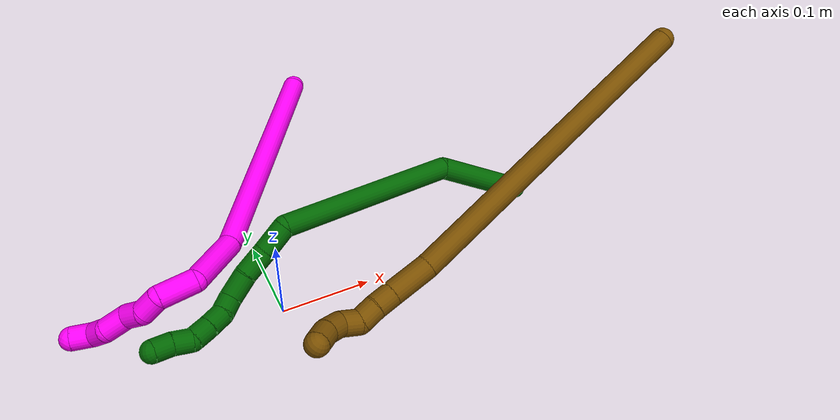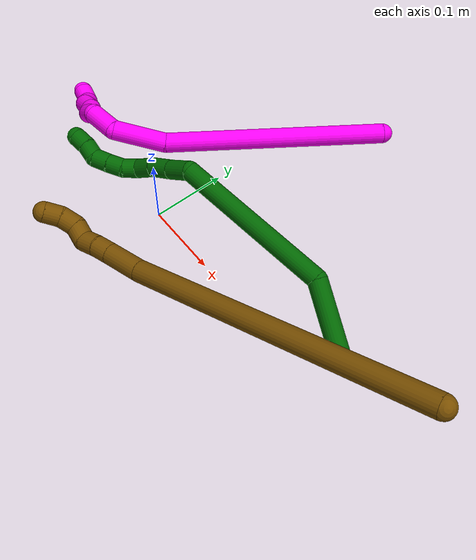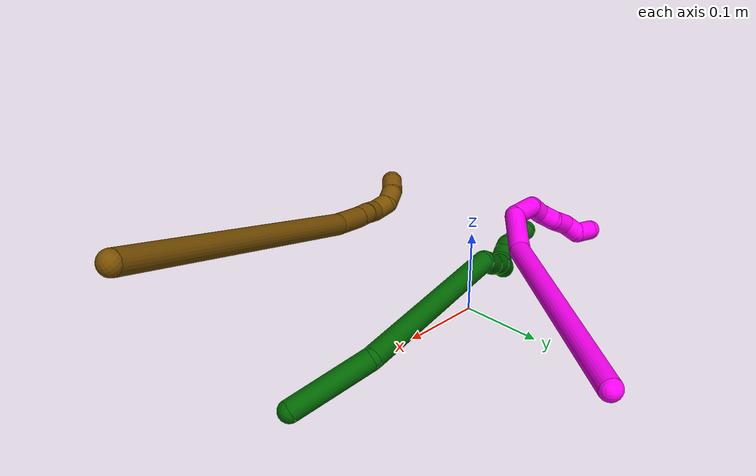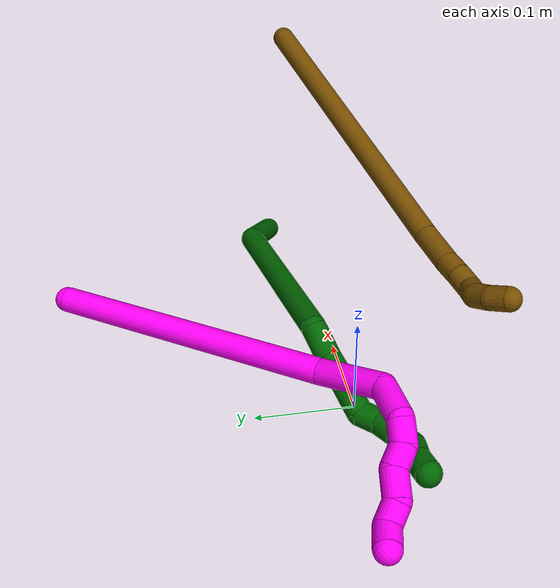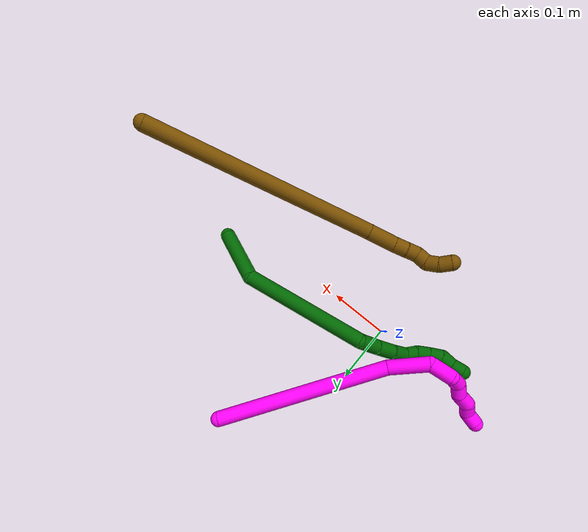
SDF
<sdf version="1.7">
 <world name="default">
  <model name="6">
   <static>0</static>
   <link name="6">
    <collision name="collision-cylinder-e_1_1_4">
     <pose>-0.036796 0.011792 -0.02721 -2.73267 -0.892449 2.3236</pose>
     <geometry><cylinder><radius>0.0125</radius><length>0.094517</length></cylinder></geometry>
     <surface>
      <friction><ode><mu>1.16</mu><mu2>1.16</mu2><slip1>0</slip1><slip2>0</slip2></ode></friction>
      <contact><ode><kp>1e+06</kp><kd>1</kd><max_vel>0</max_vel><min_depth>0.001</min_depth></ode></contact>
     </surface>
    </collision>
    <visual name="visual-cylinder-e_1_1_4">
     <pose>-0.036796 0.011792 -0.02721 -2.73267 -0.892449 2.3236</pose>
     <geometry><cylinder><radius>0.0125</radius><length>0.094517</length></cylinder></geometry>
     <material><ambient>0 0.392157 0.003922 1</ambient></material>
    </visual>
    <collision name="collision-cylinder-e_2_4_5">
     <pose>-0.154017 -0.009804 -0.111056 2.60892 -0.885497 -2.09734</pose>
     <geometry><cylinder><radius>0.0125</radius><length>0.207754</length></cylinder></geometry>
     <surface>
      <friction><ode><mu>1.16</mu><mu2>1.16</mu2><slip1>0</slip1><slip2>0</slip2></ode></friction>
      <contact><ode><kp>1e+06</kp><kd>1</kd><max_vel>0</max_vel><min_depth>0.001</min_depth></ode></contact>
     </surface>
    </collision>
    <visual name="visual-cylinder-e_2_4_5">
     <pose>-0.154017 -0.009804 -0.111056 2.60892 -0.885497 -2.09734</pose>
     <geometry><cylinder><radius>0.0125</radius><length>0.207754</length></cylinder></geometry>
     <material><ambient>0 0.392157 0.003922 1</ambient></material>
    </visual>
    <collision name="collision-cylinder-e_3_5_6">
     <pose>-0.238902 -0.055176 -0.178546 2.30675 -0.269197 -0.592714</pose>
     <geometry><cylinder><radius>0.0125</radius><length>0.033546</length></cylinder></geometry>
     <surface>
      <friction><ode><mu>1.16</mu><mu2>1.16</mu2><slip1>0</slip1><slip2>0</slip2></ode></friction>
      <contact><ode><kp>1e+06</kp><kd>1</kd><max_vel>0</max_vel><min_depth>0.001</min_depth></ode></contact>
     </surface>
    </collision>
    <visual name="visual-cylinder-e_3_5_6">
     <pose>-0.238902 -0.055176 -0.178546 2.30675 -0.269197 -0.592714</pose>
     <geometry><cylinder><radius>0.0125</radius><length>0.033546</length></cylinder></geometry>
     <material><ambient>0 0.392157 0.003922 1</ambient></material>
    </visual>
    <collision name="collision-cylinder-e_4_6_7">
     <pose>-0.248802 -0.078097 -0.198681 2.2745 -0.362389 -0.753686</pose>
     <geometry><cylinder><radius>0.0125</radius><length>0.030682</length></cylinder></geometry>
     <surface>
      <friction><ode><mu>1.16</mu><mu2>1.16</mu2><slip1>0</slip1><slip2>0</slip2></ode></friction>
      <contact><ode><kp>1e+06</kp><kd>1</kd><max_vel>0</max_vel><min_depth>0.001</min_depth></ode></contact>
     </surface>
    </collision>
    <visual name="visual-cylinder-e_4_6_7">
     <pose>-0.248802 -0.078097 -0.198681 2.2745 -0.362389 -0.753686</pose>
     <geometry><cylinder><radius>0.0125</radius><length>0.030682</length></cylinder></geometry>
     <material><ambient>0 0.392157 0.003922 1</ambient></material>
    </visual>
    <collision name="collision-cylinder-e_5_7_8">
     <pose>-0.257137 -0.100504 -0.216904 2.2329 -0.196625 -0.398511</pose>
     <geometry><cylinder><radius>0.0125</radius><length>0.029658</length></cylinder></geometry>
     <surface>
      <friction><ode><mu>1.16</mu><mu2>1.16</mu2><slip1>0</slip1><slip2>0</slip2></ode></friction>
      <contact><ode><kp>1e+06</kp><kd>1</kd><max_vel>0</max_vel><min_depth>0.001</min_depth></ode></contact>
     </surface>
    </collision>
    <visual name="visual-cylinder-e_5_7_8">
     <pose>-0.257137 -0.100504 -0.216904 2.2329 -0.196625 -0.398511</pose>
     <geometry><cylinder><radius>0.0125</radius><length>0.029658</length></cylinder></geometry>
     <material><ambient>0 0.392157 0.003922 1</ambient></material>
    </visual>
    <collision name="collision-cylinder-e_6_8_9">
     <pose>-0.266115 -0.120133 -0.226583 1.66102 -0.638573 -0.694397</pose>
     <geometry><cylinder><radius>0.0125</radius><length>0.020404</length></cylinder></geometry>
     <surface>
      <friction><ode><mu>1.16</mu><mu2>1.16</mu2><slip1>0</slip1><slip2>0</slip2></ode></friction>
      <contact><ode><kp>1e+06</kp><kd>1</kd><max_vel>0</max_vel><min_depth>0.001</min_depth></ode></contact>
     </surface>
    </collision>
    <visual name="visual-cylinder-e_6_8_9">
     <pose>-0.266115 -0.120133 -0.226583 1.66102 -0.638573 -0.694397</pose>
     <geometry><cylinder><radius>0.0125</radius><length>0.020404</length></cylinder></geometry>
     <material><ambient>0 0.392157 0.003922 1</ambient></material>
    </visual>
    <collision name="collision-cylinder-e_7_9_10">
     <pose>-0.279824 -0.134761 -0.230436 2.01955 -0.815543 -1.20452</pose>
     <geometry><cylinder><radius>0.0125</radius><length>0.020953</length></cylinder></geometry>
     <surface>
      <friction><ode><mu>1.16</mu><mu2>1.16</mu2><slip1>0</slip1><slip2>0</slip2></ode></friction>
      <contact><ode><kp>1e+06</kp><kd>1</kd><max_vel>0</max_vel><min_depth>0.001</min_depth></ode></contact>
     </surface>
    </collision>
    <visual name="visual-cylinder-e_7_9_10">
     <pose>-0.279824 -0.134761 -0.230436 2.01955 -0.815543 -1.20452</pose>
     <geometry><cylinder><radius>0.0125</radius><length>0.020953</length></cylinder></geometry>
     <material><ambient>0 0.392157 0.003922 1</ambient></material>
    </visual>
    <collision name="collision-cylinder-e_8_10_11">
     <pose>-0.295434 -0.147342 -0.237003 2.08493 -0.849579 -1.31858</pose>
     <geometry><cylinder><radius>0.0125</radius><length>0.021257</length></cylinder></geometry>
     <surface>
      <friction><ode><mu>1.16</mu><mu2>1.16</mu2><slip1>0</slip1><slip2>0</slip2></ode></friction>
      <contact><ode><kp>1e+06</kp><kd>1</kd><max_vel>0</max_vel><min_depth>0.001</min_depth></ode></contact>
     </surface>
    </collision>
    <visual name="visual-cylinder-e_8_10_11">
     <pose>-0.295434 -0.147342 -0.237003 2.08493 -0.849579 -1.31858</pose>
     <geometry><cylinder><radius>0.0125</radius><length>0.021257</length></cylinder></geometry>
     <material><ambient>0 0.392157 0.003922 1</ambient></material>
    </visual>
    <collision name="collision-cylinder-e_9_11_12">
     <pose>-0.311171 -0.154602 -0.247038 2.96877 -0.859502 -2.76798</pose>
     <geometry><cylinder><radius>0.0125</radius><length>0.020475</length></cylinder></geometry>
     <surface>
      <friction><ode><mu>1.16</mu><mu2>1.16</mu2><slip1>0</slip1><slip2>0</slip2></ode></friction>
      <contact><ode><kp>1e+06</kp><kd>1</kd><max_vel>0</max_vel><min_depth>0.001</min_depth></ode></contact>
     </surface>
    </collision>
    <visual name="visual-cylinder-e_9_11_12">
     <pose>-0.311171 -0.154602 -0.247038 2.96877 -0.859502 -2.76798</pose>
     <geometry><cylinder><radius>0.0125</radius><length>0.020475</length></cylinder></geometry>
     <material><ambient>0 0.392157 0.003922 1</ambient></material>
    </visual>
    <collision name="collision-cylinder-e_10_12_2">
     <pose>-0.327219 -0.158826 -0.259049 2.6261 -0.925915 -2.1698</pose>
     <geometry><cylinder><radius>0.0125</radius><length>0.020754</length></cylinder></geometry>
     <surface>
      <friction><ode><mu>1.16</mu><mu2>1.16</mu2><slip1>0</slip1><slip2>0</slip2></ode></friction>
      <contact><ode><kp>1e+06</kp><kd>1</kd><max_vel>0</max_vel><min_depth>0.001</min_depth></ode></contact>
     </surface>
    </collision>
    <visual name="visual-cylinder-e_10_12_2">
     <pose>-0.327219 -0.158826 -0.259049 2.6261 -0.925915 -2.1698</pose>
     <geometry><cylinder><radius>0.0125</radius><length>0.020754</length></cylinder></geometry>
     <material><ambient>0 0.392157 0.003922 1</ambient></material>
    </visual>
    <collision name="collision-sphere-2">
     <pose>-0.335512 -0.161901 -0.264476 0 -0 0</pose>
     <geometry><sphere><radius>0.0125</radius></sphere></geometry>
     <surface>
      <friction><ode><mu>1.16</mu><mu2>1.16</mu2><slip1>0</slip1><slip2>0</slip2></ode></friction>
      <contact><ode><kp>1e+06</kp><kd>1</kd><max_vel>0</max_vel><min_depth>0.001</min_depth></ode></contact>
     </surface>
    </collision>
    <visual name="visual-sphere-2">
     <pose>-0.335512 -0.161901 -0.264476 0 -0 0</pose>
     <geometry><sphere><radius>0.0125</radius></sphere></geometry>
     <material><ambient>0 0.392157 0.003922 1</ambient></material>
    </visual>
    <collision name="collision-sphere-12">
     <pose>-0.318926 -0.155751 -0.253622 0 -0 0</pose>
     <geometry><sphere><radius>0.0125</radius></sphere></geometry>
     <surface>
      <friction><ode><mu>1.16</mu><mu2>1.16</mu2><slip1>0</slip1><slip2>0</slip2></ode></friction>
      <contact><ode><kp>1e+06</kp><kd>1</kd><max_vel>0</max_vel><min_depth>0.001</min_depth></ode></contact>
     </surface>
    </collision>
    <visual name="visual-sphere-12">
     <pose>-0.318926 -0.155751 -0.253622 0 -0 0</pose>
     <geometry><sphere><radius>0.0125</radius></sphere></geometry>
     <material><ambient>0 0.392157 0.003922 1</ambient></material>
    </visual>
    <collision name="collision-sphere-11">
     <pose>-0.303416 -0.153453 -0.240454 0 -0 0</pose>
     <geometry><sphere><radius>0.0125</radius></sphere></geometry>
     <surface>
      <friction><ode><mu>1.16</mu><mu2>1.16</mu2><slip1>0</slip1><slip2>0</slip2></ode></friction>
      <contact><ode><kp>1e+06</kp><kd>1</kd><max_vel>0</max_vel><min_depth>0.001</min_depth></ode></contact>
     </surface>
    </collision>
    <visual name="visual-sphere-11">
     <pose>-0.303416 -0.153453 -0.240454 0 -0 0</pose>
     <geometry><sphere><radius>0.0125</radius></sphere></geometry>
     <material><ambient>0 0.392157 0.003922 1</ambient></material>
    </visual>
    <collision name="collision-sphere-10">
     <pose>-0.287451 -0.141231 -0.233552 0 -0 0</pose>
     <geometry><sphere><radius>0.0125</radius></sphere></geometry>
     <surface>
      <friction><ode><mu>1.16</mu><mu2>1.16</mu2><slip1>0</slip1><slip2>0</slip2></ode></friction>
      <contact><ode><kp>1e+06</kp><kd>1</kd><max_vel>0</max_vel><min_depth>0.001</min_depth></ode></contact>
     </surface>
    </collision>
    <visual name="visual-sphere-10">
     <pose>-0.287451 -0.141231 -0.233552 0 -0 0</pose>
     <geometry><sphere><radius>0.0125</radius></sphere></geometry>
     <material><ambient>0 0.392157 0.003922 1</ambient></material>
    </visual>
    <collision name="collision-sphere-9">
     <pose>-0.272196 -0.128291 -0.227321 0 -0 0</pose>
     <geometry><sphere><radius>0.0125</radius></sphere></geometry>
     <surface>
      <friction><ode><mu>1.16</mu><mu2>1.16</mu2><slip1>0</slip1><slip2>0</slip2></ode></friction>
      <contact><ode><kp>1e+06</kp><kd>1</kd><max_vel>0</max_vel><min_depth>0.001</min_depth></ode></contact>
     </surface>
    </collision>
    <visual name="visual-sphere-9">
     <pose>-0.272196 -0.128291 -0.227321 0 -0 0</pose>
     <geometry><sphere><radius>0.0125</radius></sphere></geometry>
     <material><ambient>0 0.392157 0.003922 1</ambient></material>
    </visual>
    <collision name="collision-sphere-4">
     <pose>-0.073592 0.023583 -0.05442 0 -0 0</pose>
     <geometry><sphere><radius>0.0125</radius></sphere></geometry>
     <surface>
      <friction><ode><mu>1.16</mu><mu2>1.16</mu2><slip1>0</slip1><slip2>0</slip2></ode></friction>
      <contact><ode><kp>1e+06</kp><kd>1</kd><max_vel>0</max_vel><min_depth>0.001</min_depth></ode></contact>
     </surface>
    </collision>
    <visual name="visual-sphere-4">
     <pose>-0.073592 0.023583 -0.05442 0 -0 0</pose>
     <geometry><sphere><radius>0.0125</radius></sphere></geometry>
     <material><ambient>0 0.392157 0.003922 1</ambient></material>
    </visual>
    <collision name="collision-sphere-1">
     <geometry><sphere><radius>0.0125</radius></sphere></geometry>
     <surface>
      <friction><ode><mu>1.16</mu><mu2>1.16</mu2><slip1>0</slip1><slip2>0</slip2></ode></friction>
      <contact><ode><kp>1e+06</kp><kd>1</kd><max_vel>0</max_vel><min_depth>0.001</min_depth></ode></contact>
     </surface>
    </collision>
    <visual name="visual-sphere-1">
     <geometry><sphere><radius>0.0125</radius></sphere></geometry>
     <material><ambient>0 0.392157 0.003922 1</ambient></material>
    </visual>
    <collision name="collision-sphere-8">
     <pose>-0.260034 -0.111974 -0.225845 0 -0 0</pose>
     <geometry><sphere><radius>0.0125</radius></sphere></geometry>
     <surface>
      <friction><ode><mu>1.16</mu><mu2>1.16</mu2><slip1>0</slip1><slip2>0</slip2></ode></friction>
      <contact><ode><kp>1e+06</kp><kd>1</kd><max_vel>0</max_vel><min_depth>0.001</min_depth></ode></contact>
     </surface>
    </collision>
    <visual name="visual-sphere-8">
     <pose>-0.260034 -0.111974 -0.225845 0 -0 0</pose>
     <geometry><sphere><radius>0.0125</radius></sphere></geometry>
     <material><ambient>0 0.392157 0.003922 1</ambient></material>
    </visual>
    <collision name="collision-sphere-5">
     <pose>-0.234441 -0.043191 -0.167691 0 -0 0</pose>
     <geometry><sphere><radius>0.0125</radius></sphere></geometry>
     <surface>
      <friction><ode><mu>1.16</mu><mu2>1.16</mu2><slip1>0</slip1><slip2>0</slip2></ode></friction>
      <contact><ode><kp>1e+06</kp><kd>1</kd><max_vel>0</max_vel><min_depth>0.001</min_depth></ode></contact>
     </surface>
    </collision>
    <visual name="visual-sphere-5">
     <pose>-0.234441 -0.043191 -0.167691 0 -0 0</pose>
     <geometry><sphere><radius>0.0125</radius></sphere></geometry>
     <material><ambient>0 0.392157 0.003922 1</ambient></material>
    </visual>
    <collision name="collision-sphere-6">
     <pose>-0.243363 -0.06716 -0.1894 0 -0 0</pose>
     <geometry><sphere><radius>0.0125</radius></sphere></geometry>
     <surface>
      <friction><ode><mu>1.16</mu><mu2>1.16</mu2><slip1>0</slip1><slip2>0</slip2></ode></friction>
      <contact><ode><kp>1e+06</kp><kd>1</kd><max_vel>0</max_vel><min_depth>0.001</min_depth></ode></contact>
     </surface>
    </collision>
    <visual name="visual-sphere-6">
     <pose>-0.243363 -0.06716 -0.1894 0 -0 0</pose>
     <geometry><sphere><radius>0.0125</radius></sphere></geometry>
     <material><ambient>0 0.392157 0.003922 1</ambient></material>
    </visual>
    <collision name="collision-sphere-7">
     <pose>-0.25424 -0.089034 -0.207963 0 -0 0</pose>
     <geometry><sphere><radius>0.0125</radius></sphere></geometry>
     <surface>
      <friction><ode><mu>1.16</mu><mu2>1.16</mu2><slip1>0</slip1><slip2>0</slip2></ode></friction>
      <contact><ode><kp>1e+06</kp><kd>1</kd><max_vel>0</max_vel><min_depth>0.001</min_depth></ode></contact>
     </surface>
    </collision>
    <visual name="visual-sphere-7">
     <pose>-0.25424 -0.089034 -0.207963 0 -0 0</pose>
     <geometry><sphere><radius>0.0125</radius></sphere></geometry>
     <material><ambient>0 0.392157 0.003922 1</ambient></material>
    </visual>
    <inertial>
     <pose>-0.17897 -0.046038 -0.138173 0 -0 0</pose>
     <mass>0.5</mass>
     <inertia>
      <ixx>-0.000678</ixx>
      <ixy>0</ixy>
      <ixz>0</ixz>
      <iyy>0.000245</iyy>
      <iyz>0</iyz>
      <izz>0.000867</izz>
     </inertia>
    </inertial>
   </link>
   <pose>0.30843 0.037812 0.029324 0.834613 0.763757 0.339774</pose>
  </model>
  <model name="10">
   <static>0</static>
   <link name="10">
    <collision name="collision-cylinder-e_1_1_4">
     <pose>0.022003 -0.077041 -0.113902 2.5469 0.158664 0.507673</pose>
     <geometry><cylinder><radius>0.0125</radius><length>0.278517</length></cylinder></geometry>
     <surface>
      <friction><ode><mu>1.16</mu><mu2>1.16</mu2><slip1>0</slip1><slip2>0</slip2></ode></friction>
      <contact><ode><kp>1e+06</kp><kd>1</kd><max_vel>0</max_vel><min_depth>0.001</min_depth></ode></contact>
     </surface>
    </collision>
    <visual name="visual-cylinder-e_1_1_4">
     <pose>0.022003 -0.077041 -0.113902 2.5469 0.158664 0.507673</pose>
     <geometry><cylinder><radius>0.0125</radius><length>0.278517</length></cylinder></geometry>
     <material><ambient>1 0 0.964706 1</ambient></material>
    </visual>
    <collision name="collision-cylinder-e_2_4_5">
     <pose>0.04027 -0.175758 -0.253454 2.43996 -0.110781 -0.300744</pose>
     <geometry><cylinder><radius>0.0125</radius><length>0.06758</length></cylinder></geometry>
     <surface>
      <friction><ode><mu>1.16</mu><mu2>1.16</mu2><slip1>0</slip1><slip2>0</slip2></ode></friction>
      <contact><ode><kp>1e+06</kp><kd>1</kd><max_vel>0</max_vel><min_depth>0.001</min_depth></ode></contact>
     </surface>
    </collision>
    <visual name="visual-cylinder-e_2_4_5">
     <pose>0.04027 -0.175758 -0.253454 2.43996 -0.110781 -0.300744</pose>
     <geometry><cylinder><radius>0.0125</radius><length>0.06758</length></cylinder></geometry>
     <material><ambient>1 0 0.964706 1</ambient></material>
    </visual>
    <collision name="collision-cylinder-e_3_5_6">
     <pose>0.02576 -0.19937 -0.295724 3.02567 -0.572077 -2.75198</pose>
     <geometry><cylinder><radius>0.0125</radius><length>0.039802</length></cylinder></geometry>
     <surface>
      <friction><ode><mu>1.16</mu><mu2>1.16</mu2><slip1>0</slip1><slip2>0</slip2></ode></friction>
      <contact><ode><kp>1e+06</kp><kd>1</kd><max_vel>0</max_vel><min_depth>0.001</min_depth></ode></contact>
     </surface>
    </collision>
    <visual name="visual-cylinder-e_3_5_6">
     <pose>0.02576 -0.19937 -0.295724 3.02567 -0.572077 -2.75198</pose>
     <geometry><cylinder><radius>0.0125</radius><length>0.039802</length></cylinder></geometry>
     <material><ambient>1 0 0.964706 1</ambient></material>
    </visual>
    <collision name="collision-cylinder-e_4_6_7">
     <pose>0.012617 -0.195927 -0.321827 -2.6257 -0.213992 0.773242</pose>
     <geometry><cylinder><radius>0.0125</radius><length>0.022312</length></cylinder></geometry>
     <surface>
      <friction><ode><mu>1.16</mu><mu2>1.16</mu2><slip1>0</slip1><slip2>0</slip2></ode></friction>
      <contact><ode><kp>1e+06</kp><kd>1</kd><max_vel>0</max_vel><min_depth>0.001</min_depth></ode></contact>
     </surface>
    </collision>
    <visual name="visual-cylinder-e_4_6_7">
     <pose>0.012617 -0.195927 -0.321827 -2.6257 -0.213992 0.773242</pose>
     <geometry><cylinder><radius>0.0125</radius><length>0.022312</length></cylinder></geometry>
     <material><ambient>1 0 0.964706 1</ambient></material>
    </visual>
    <collision name="collision-cylinder-e_5_7_8">
     <pose>0.004353 -0.182943 -0.336634 -2.18148 -0.565685 1.0182</pose>
     <geometry><cylinder><radius>0.0125</radius><length>0.021997</length></cylinder></geometry>
     <surface>
      <friction><ode><mu>1.16</mu><mu2>1.16</mu2><slip1>0</slip1><slip2>0</slip2></ode></friction>
      <contact><ode><kp>1e+06</kp><kd>1</kd><max_vel>0</max_vel><min_depth>0.001</min_depth></ode></contact>
     </surface>
    </collision>
    <visual name="visual-cylinder-e_5_7_8">
     <pose>0.004353 -0.182943 -0.336634 -2.18148 -0.565685 1.0182</pose>
     <geometry><cylinder><radius>0.0125</radius><length>0.021997</length></cylinder></geometry>
     <material><ambient>1 0 0.964706 1</ambient></material>
    </visual>
    <collision name="collision-cylinder-e_6_8_9">
     <pose>-0.006868 -0.170402 -0.352978 -2.72068 -0.415433 1.55729</pose>
     <geometry><cylinder><radius>0.0125</radius><length>0.026393</length></cylinder></geometry>
     <surface>
      <friction><ode><mu>1.16</mu><mu2>1.16</mu2><slip1>0</slip1><slip2>0</slip2></ode></friction>
      <contact><ode><kp>1e+06</kp><kd>1</kd><max_vel>0</max_vel><min_depth>0.001</min_depth></ode></contact>
     </surface>
    </collision>
    <visual name="visual-cylinder-e_6_8_9">
     <pose>-0.006868 -0.170402 -0.352978 -2.72068 -0.415433 1.55729</pose>
     <geometry><cylinder><radius>0.0125</radius><length>0.026393</length></cylinder></geometry>
     <material><ambient>1 0 0.964706 1</ambient></material>
    </visual>
    <collision name="collision-cylinder-e_7_9_10">
     <pose>-0.016741 -0.157382 -0.36903 -2.12736 -0.445444 0.774157</pose>
     <geometry><cylinder><radius>0.0125</radius><length>0.021107</length></cylinder></geometry>
     <surface>
      <friction><ode><mu>1.16</mu><mu2>1.16</mu2><slip1>0</slip1><slip2>0</slip2></ode></friction>
      <contact><ode><kp>1e+06</kp><kd>1</kd><max_vel>0</max_vel><min_depth>0.001</min_depth></ode></contact>
     </surface>
    </collision>
    <visual name="visual-cylinder-e_7_9_10">
     <pose>-0.016741 -0.157382 -0.36903 -2.12736 -0.445444 0.774157</pose>
     <geometry><cylinder><radius>0.0125</radius><length>0.021107</length></cylinder></geometry>
     <material><ambient>1 0 0.964706 1</ambient></material>
    </visual>
    <collision name="collision-cylinder-e_8_10_2">
     <pose>-0.02954 -0.147889 -0.38142 -2.95275 -0.833551 2.72012</pose>
     <geometry><cylinder><radius>0.0125</radius><length>0.022291</length></cylinder></geometry>
     <surface>
      <friction><ode><mu>1.16</mu><mu2>1.16</mu2><slip1>0</slip1><slip2>0</slip2></ode></friction>
      <contact><ode><kp>1e+06</kp><kd>1</kd><max_vel>0</max_vel><min_depth>0.001</min_depth></ode></contact>
     </surface>
    </collision>
    <visual name="visual-cylinder-e_8_10_2">
     <pose>-0.02954 -0.147889 -0.38142 -2.95275 -0.833551 2.72012</pose>
     <geometry><cylinder><radius>0.0125</radius><length>0.022291</length></cylinder></geometry>
     <material><ambient>1 0 0.964706 1</ambient></material>
    </visual>
    <collision name="collision-sphere-2">
     <pose>-0.037791 -0.146483 -0.38878 0 -0 0</pose>
     <geometry><sphere><radius>0.0125</radius></sphere></geometry>
     <surface>
      <friction><ode><mu>1.16</mu><mu2>1.16</mu2><slip1>0</slip1><slip2>0</slip2></ode></friction>
      <contact><ode><kp>1e+06</kp><kd>1</kd><max_vel>0</max_vel><min_depth>0.001</min_depth></ode></contact>
     </surface>
    </collision>
    <visual name="visual-sphere-2">
     <pose>-0.037791 -0.146483 -0.38878 0 -0 0</pose>
     <geometry><sphere><radius>0.0125</radius></sphere></geometry>
     <material><ambient>1 0 0.964706 1</ambient></material>
    </visual>
    <collision name="collision-sphere-10">
     <pose>-0.021289 -0.149296 -0.374061 0 -0 0</pose>
     <geometry><sphere><radius>0.0125</radius></sphere></geometry>
     <surface>
      <friction><ode><mu>1.16</mu><mu2>1.16</mu2><slip1>0</slip1><slip2>0</slip2></ode></friction>
      <contact><ode><kp>1e+06</kp><kd>1</kd><max_vel>0</max_vel><min_depth>0.001</min_depth></ode></contact>
     </surface>
    </collision>
    <visual name="visual-sphere-10">
     <pose>-0.021289 -0.149296 -0.374061 0 -0 0</pose>
     <geometry><sphere><radius>0.0125</radius></sphere></geometry>
     <material><ambient>1 0 0.964706 1</ambient></material>
    </visual>
    <collision name="collision-sphere-9">
     <pose>-0.012194 -0.165469 -0.363999 0 -0 0</pose>
     <geometry><sphere><radius>0.0125</radius></sphere></geometry>
     <surface>
      <friction><ode><mu>1.16</mu><mu2>1.16</mu2><slip1>0</slip1><slip2>0</slip2></ode></friction>
      <contact><ode><kp>1e+06</kp><kd>1</kd><max_vel>0</max_vel><min_depth>0.001</min_depth></ode></contact>
     </surface>
    </collision>
    <visual name="visual-sphere-9">
     <pose>-0.012194 -0.165469 -0.363999 0 -0 0</pose>
     <geometry><sphere><radius>0.0125</radius></sphere></geometry>
     <material><ambient>1 0 0.964706 1</ambient></material>
    </visual>
    <collision name="collision-sphere-4">
     <pose>0.044005 -0.154081 -0.227803 0 -0 0</pose>
     <geometry><sphere><radius>0.0125</radius></sphere></geometry>
     <surface>
      <friction><ode><mu>1.16</mu><mu2>1.16</mu2><slip1>0</slip1><slip2>0</slip2></ode></friction>
      <contact><ode><kp>1e+06</kp><kd>1</kd><max_vel>0</max_vel><min_depth>0.001</min_depth></ode></contact>
     </surface>
    </collision>
    <visual name="visual-sphere-4">
     <pose>0.044005 -0.154081 -0.227803 0 -0 0</pose>
     <geometry><sphere><radius>0.0125</radius></sphere></geometry>
     <material><ambient>1 0 0.964706 1</ambient></material>
    </visual>
    <collision name="collision-sphere-1">
     <geometry><sphere><radius>0.0125</radius></sphere></geometry>
     <surface>
      <friction><ode><mu>1.16</mu><mu2>1.16</mu2><slip1>0</slip1><slip2>0</slip2></ode></friction>
      <contact><ode><kp>1e+06</kp><kd>1</kd><max_vel>0</max_vel><min_depth>0.001</min_depth></ode></contact>
     </surface>
    </collision>
    <visual name="visual-sphere-1">
     <geometry><sphere><radius>0.0125</radius></sphere></geometry>
     <material><ambient>1 0 0.964706 1</ambient></material>
    </visual>
    <collision name="collision-sphere-8">
     <pose>-0.001542 -0.175336 -0.341958 0 -0 0</pose>
     <geometry><sphere><radius>0.0125</radius></sphere></geometry>
     <surface>
      <friction><ode><mu>1.16</mu><mu2>1.16</mu2><slip1>0</slip1><slip2>0</slip2></ode></friction>
      <contact><ode><kp>1e+06</kp><kd>1</kd><max_vel>0</max_vel><min_depth>0.001</min_depth></ode></contact>
     </surface>
    </collision>
    <visual name="visual-sphere-8">
     <pose>-0.001542 -0.175336 -0.341958 0 -0 0</pose>
     <geometry><sphere><radius>0.0125</radius></sphere></geometry>
     <material><ambient>1 0 0.964706 1</ambient></material>
    </visual>
    <collision name="collision-sphere-5">
     <pose>0.036534 -0.197434 -0.279104 0 -0 0</pose>
     <geometry><sphere><radius>0.0125</radius></sphere></geometry>
     <surface>
      <friction><ode><mu>1.16</mu><mu2>1.16</mu2><slip1>0</slip1><slip2>0</slip2></ode></friction>
      <contact><ode><kp>1e+06</kp><kd>1</kd><max_vel>0</max_vel><min_depth>0.001</min_depth></ode></contact>
     </surface>
    </collision>
    <visual name="visual-sphere-5">
     <pose>0.036534 -0.197434 -0.279104 0 -0 0</pose>
     <geometry><sphere><radius>0.0125</radius></sphere></geometry>
     <material><ambient>1 0 0.964706 1</ambient></material>
    </visual>
    <collision name="collision-sphere-6">
     <pose>0.014986 -0.201305 -0.312344 0 -0 0</pose>
     <geometry><sphere><radius>0.0125</radius></sphere></geometry>
     <surface>
      <friction><ode><mu>1.16</mu><mu2>1.16</mu2><slip1>0</slip1><slip2>0</slip2></ode></friction>
      <contact><ode><kp>1e+06</kp><kd>1</kd><max_vel>0</max_vel><min_depth>0.001</min_depth></ode></contact>
     </surface>
    </collision>
    <visual name="visual-sphere-6">
     <pose>0.014986 -0.201305 -0.312344 0 -0 0</pose>
     <geometry><sphere><radius>0.0125</radius></sphere></geometry>
     <material><ambient>1 0 0.964706 1</ambient></material>
    </visual>
    <collision name="collision-sphere-7">
     <pose>0.010248 -0.19055 -0.331309 0 -0 0</pose>
     <geometry><sphere><radius>0.0125</radius></sphere></geometry>
     <surface>
      <friction><ode><mu>1.16</mu><mu2>1.16</mu2><slip1>0</slip1><slip2>0</slip2></ode></friction>
      <contact><ode><kp>1e+06</kp><kd>1</kd><max_vel>0</max_vel><min_depth>0.001</min_depth></ode></contact>
     </surface>
    </collision>
    <visual name="visual-sphere-7">
     <pose>0.010248 -0.19055 -0.331309 0 -0 0</pose>
     <geometry><sphere><radius>0.0125</radius></sphere></geometry>
     <material><ambient>1 0 0.964706 1</ambient></material>
    </visual>
    <inertial>
     <pose>0.018118 -0.121564 -0.201631 0 -0 0</pose>
     <mass>0.5</mass>
     <inertia>
      <ixx>0.002449</ixx>
      <ixy>0</ixy>
      <ixz>0</ixz>
      <iyy>-0.000392</iyy>
      <iyz>0</iyz>
      <izz>0.000711</izz>
     </inertia>
    </inertial>
   </link>
   <pose>0.120649 0.273186 0.078887 -1.06382 0.464635 -0.780881</pose>
  </model>
  <model name="12">
   <static>0</static>
   <link name="12">
    <collision name="collision-cylinder-e_1_1_4">
     <pose>-0.121373 -0.07 -0.108589 2.569 -0.754189 -1.86319</pose>
     <geometry><cylinder><radius>0.0125</radius><length>0.35453</length></cylinder></geometry>
     <surface>
      <friction><ode><mu>1.16</mu><mu2>1.16</mu2><slip1>0</slip1><slip2>0</slip2></ode></friction>
      <contact><ode><kp>1e+06</kp><kd>1</kd><max_vel>0</max_vel><min_depth>0.001</min_depth></ode></contact>
     </surface>
    </collision>
    <visual name="visual-cylinder-e_1_1_4">
     <pose>-0.121373 -0.07 -0.108589 2.569 -0.754189 -1.86319</pose>
     <geometry><cylinder><radius>0.0125</radius><length>0.35453</length></cylinder></geometry>
     <material><ambient>0.466667 0.301961 0 1</ambient></material>
    </visual>
    <collision name="collision-cylinder-e_2_4_5">
     <pose>-0.259878 -0.14742 -0.229196 2.58844 -0.881323 -2.05795</pose>
     <geometry><cylinder><radius>0.0125</radius><length>0.044408</length></cylinder></geometry>
     <surface>
      <friction><ode><mu>1.16</mu><mu2>1.16</mu2><slip1>0</slip1><slip2>0</slip2></ode></friction>
      <contact><ode><kp>1e+06</kp><kd>1</kd><max_vel>0</max_vel><min_depth>0.001</min_depth></ode></contact>
     </surface>
    </collision>
    <visual name="visual-cylinder-e_2_4_5">
     <pose>-0.259878 -0.14742 -0.229196 2.58844 -0.881323 -2.05795</pose>
     <geometry><cylinder><radius>0.0125</radius><length>0.044408</length></cylinder></geometry>
     <material><ambient>0.466667 0.301961 0 1</ambient></material>
    </visual>
    <collision name="collision-cylinder-e_3_5_6">
     <pose>-0.285216 -0.158547 -0.246198 2.50223 -0.922901 -1.96689</pose>
     <geometry><cylinder><radius>0.0125</radius><length>0.020583</length></cylinder></geometry>
     <surface>
      <friction><ode><mu>1.16</mu><mu2>1.16</mu2><slip1>0</slip1><slip2>0</slip2></ode></friction>
      <contact><ode><kp>1e+06</kp><kd>1</kd><max_vel>0</max_vel><min_depth>0.001</min_depth></ode></contact>
     </surface>
    </collision>
    <visual name="visual-cylinder-e_3_5_6">
     <pose>-0.285216 -0.158547 -0.246198 2.50223 -0.922901 -1.96689</pose>
     <geometry><cylinder><radius>0.0125</radius><length>0.020583</length></cylinder></geometry>
     <material><ambient>0.466667 0.301961 0 1</ambient></material>
    </visual>
    <collision name="collision-cylinder-e_4_6_7">
     <pose>-0.300767 -0.166477 -0.256904 2.50557 -0.801488 -1.8205</pose>
     <geometry><cylinder><radius>0.0125</radius><length>0.020447</length></cylinder></geometry>
     <surface>
      <friction><ode><mu>1.16</mu><mu2>1.16</mu2><slip1>0</slip1><slip2>0</slip2></ode></friction>
      <contact><ode><kp>1e+06</kp><kd>1</kd><max_vel>0</max_vel><min_depth>0.001</min_depth></ode></contact>
     </surface>
    </collision>
    <visual name="visual-cylinder-e_4_6_7">
     <pose>-0.300767 -0.166477 -0.256904 2.50557 -0.801488 -1.8205</pose>
     <geometry><cylinder><radius>0.0125</radius><length>0.020447</length></cylinder></geometry>
     <material><ambient>0.466667 0.301961 0 1</ambient></material>
    </visual>
    <collision name="collision-cylinder-e_5_7_8">
     <pose>-0.317726 -0.169793 -0.265239 -2.80708 -1.2905 2.70031</pose>
     <geometry><cylinder><radius>0.0125</radius><length>0.020012</length></cylinder></geometry>
     <surface>
      <friction><ode><mu>1.16</mu><mu2>1.16</mu2><slip1>0</slip1><slip2>0</slip2></ode></friction>
      <contact><ode><kp>1e+06</kp><kd>1</kd><max_vel>0</max_vel><min_depth>0.001</min_depth></ode></contact>
     </surface>
    </collision>
    <visual name="visual-cylinder-e_5_7_8">
     <pose>-0.317726 -0.169793 -0.265239 -2.80708 -1.2905 2.70031</pose>
     <geometry><cylinder><radius>0.0125</radius><length>0.020012</length></cylinder></geometry>
     <material><ambient>0.466667 0.301961 0 1</ambient></material>
    </visual>
    <collision name="collision-cylinder-e_6_8_9">
     <pose>-0.336588 -0.172673 -0.267449 1.46421 -1.17996 -1.08335</pose>
     <geometry><cylinder><radius>0.0125</radius><length>0.020001</length></cylinder></geometry>
     <surface>
      <friction><ode><mu>1.16</mu><mu2>1.16</mu2><slip1>0</slip1><slip2>0</slip2></ode></friction>
      <contact><ode><kp>1e+06</kp><kd>1</kd><max_vel>0</max_vel><min_depth>0.001</min_depth></ode></contact>
     </surface>
    </collision>
    <visual name="visual-cylinder-e_6_8_9">
     <pose>-0.336588 -0.172673 -0.267449 1.46421 -1.17996 -1.08335</pose>
     <geometry><cylinder><radius>0.0125</radius><length>0.020001</length></cylinder></geometry>
     <material><ambient>0.466667 0.301961 0 1</ambient></material>
    </visual>
    <collision name="collision-cylinder-e_7_9_2">
     <pose>-0.353495 -0.182789 -0.265833 1.38189 -0.871477 -0.735028</pose>
     <geometry><cylinder><radius>0.0125</radius><length>0.020019</length></cylinder></geometry>
     <surface>
      <friction><ode><mu>1.16</mu><mu2>1.16</mu2><slip1>0</slip1><slip2>0</slip2></ode></friction>
      <contact><ode><kp>1e+06</kp><kd>1</kd><max_vel>0</max_vel><min_depth>0.001</min_depth></ode></contact>
     </surface>
    </collision>
    <visual name="visual-cylinder-e_7_9_2">
     <pose>-0.353495 -0.182789 -0.265833 1.38189 -0.871477 -0.735028</pose>
     <geometry><cylinder><radius>0.0125</radius><length>0.020019</length></cylinder></geometry>
     <material><ambient>0.466667 0.301961 0 1</ambient></material>
    </visual>
    <collision name="collision-sphere-2">
     <pose>-0.361155 -0.189118 -0.264624 0 -0 0</pose>
     <geometry><sphere><radius>0.0125</radius></sphere></geometry>
     <surface>
      <friction><ode><mu>1.16</mu><mu2>1.16</mu2><slip1>0</slip1><slip2>0</slip2></ode></friction>
      <contact><ode><kp>1e+06</kp><kd>1</kd><max_vel>0</max_vel><min_depth>0.001</min_depth></ode></contact>
     </surface>
    </collision>
    <visual name="visual-sphere-2">
     <pose>-0.361155 -0.189118 -0.264624 0 -0 0</pose>
     <geometry><sphere><radius>0.0125</radius></sphere></geometry>
     <material><ambient>0.466667 0.301961 0 1</ambient></material>
    </visual>
    <collision name="collision-sphere-9">
     <pose>-0.345835 -0.176461 -0.267043 0 -0 0</pose>
     <geometry><sphere><radius>0.0125</radius></sphere></geometry>
     <surface>
      <friction><ode><mu>1.16</mu><mu2>1.16</mu2><slip1>0</slip1><slip2>0</slip2></ode></friction>
      <contact><ode><kp>1e+06</kp><kd>1</kd><max_vel>0</max_vel><min_depth>0.001</min_depth></ode></contact>
     </surface>
    </collision>
    <visual name="visual-sphere-9">
     <pose>-0.345835 -0.176461 -0.267043 0 -0 0</pose>
     <geometry><sphere><radius>0.0125</radius></sphere></geometry>
     <material><ambient>0.466667 0.301961 0 1</ambient></material>
    </visual>
    <collision name="collision-sphere-4">
     <pose>-0.242746 -0.139999 -0.217177 0 -0 0</pose>
     <geometry><sphere><radius>0.0125</radius></sphere></geometry>
     <surface>
      <friction><ode><mu>1.16</mu><mu2>1.16</mu2><slip1>0</slip1><slip2>0</slip2></ode></friction>
      <contact><ode><kp>1e+06</kp><kd>1</kd><max_vel>0</max_vel><min_depth>0.001</min_depth></ode></contact>
     </surface>
    </collision>
    <visual name="visual-sphere-4">
     <pose>-0.242746 -0.139999 -0.217177 0 -0 0</pose>
     <geometry><sphere><radius>0.0125</radius></sphere></geometry>
     <material><ambient>0.466667 0.301961 0 1</ambient></material>
    </visual>
    <collision name="collision-sphere-1">
     <geometry><sphere><radius>0.0125</radius></sphere></geometry>
     <surface>
      <friction><ode><mu>1.16</mu><mu2>1.16</mu2><slip1>0</slip1><slip2>0</slip2></ode></friction>
      <contact><ode><kp>1e+06</kp><kd>1</kd><max_vel>0</max_vel><min_depth>0.001</min_depth></ode></contact>
     </surface>
    </collision>
    <visual name="visual-sphere-1">
     <geometry><sphere><radius>0.0125</radius></sphere></geometry>
     <material><ambient>0.466667 0.301961 0 1</ambient></material>
    </visual>
    <collision name="collision-sphere-8">
     <pose>-0.327342 -0.168884 -0.267854 0 -0 0</pose>
     <geometry><sphere><radius>0.0125</radius></sphere></geometry>
     <surface>
      <friction><ode><mu>1.16</mu><mu2>1.16</mu2><slip1>0</slip1><slip2>0</slip2></ode></friction>
      <contact><ode><kp>1e+06</kp><kd>1</kd><max_vel>0</max_vel><min_depth>0.001</min_depth></ode></contact>
     </surface>
    </collision>
    <visual name="visual-sphere-8">
     <pose>-0.327342 -0.168884 -0.267854 0 -0 0</pose>
     <geometry><sphere><radius>0.0125</radius></sphere></geometry>
     <material><ambient>0.466667 0.301961 0 1</ambient></material>
    </visual>
    <collision name="collision-sphere-5">
     <pose>-0.27701 -0.154841 -0.241214 0 -0 0</pose>
     <geometry><sphere><radius>0.0125</radius></sphere></geometry>
     <surface>
      <friction><ode><mu>1.16</mu><mu2>1.16</mu2><slip1>0</slip1><slip2>0</slip2></ode></friction>
      <contact><ode><kp>1e+06</kp><kd>1</kd><max_vel>0</max_vel><min_depth>0.001</min_depth></ode></contact>
     </surface>
    </collision>
    <visual name="visual-sphere-5">
     <pose>-0.27701 -0.154841 -0.241214 0 -0 0</pose>
     <geometry><sphere><radius>0.0125</radius></sphere></geometry>
     <material><ambient>0.466667 0.301961 0 1</ambient></material>
    </visual>
    <collision name="collision-sphere-6">
     <pose>-0.293422 -0.162253 -0.251182 0 -0 0</pose>
     <geometry><sphere><radius>0.0125</radius></sphere></geometry>
     <surface>
      <friction><ode><mu>1.16</mu><mu2>1.16</mu2><slip1>0</slip1><slip2>0</slip2></ode></friction>
      <contact><ode><kp>1e+06</kp><kd>1</kd><max_vel>0</max_vel><min_depth>0.001</min_depth></ode></contact>
     </surface>
    </collision>
    <visual name="visual-sphere-6">
     <pose>-0.293422 -0.162253 -0.251182 0 -0 0</pose>
     <geometry><sphere><radius>0.0125</radius></sphere></geometry>
     <material><ambient>0.466667 0.301961 0 1</ambient></material>
    </visual>
    <collision name="collision-sphere-7">
     <pose>-0.308111 -0.170702 -0.262625 0 -0 0</pose>
     <geometry><sphere><radius>0.0125</radius></sphere></geometry>
     <surface>
      <friction><ode><mu>1.16</mu><mu2>1.16</mu2><slip1>0</slip1><slip2>0</slip2></ode></friction>
      <contact><ode><kp>1e+06</kp><kd>1</kd><max_vel>0</max_vel><min_depth>0.001</min_depth></ode></contact>
     </surface>
    </collision>
    <visual name="visual-sphere-7">
     <pose>-0.308111 -0.170702 -0.262625 0 -0 0</pose>
     <geometry><sphere><radius>0.0125</radius></sphere></geometry>
     <material><ambient>0.466667 0.301961 0 1</ambient></material>
    </visual>
    <inertial>
     <pose>-0.173517 -0.097084 -0.149951 0 -0 0</pose>
     <mass>0.5</mass>
     <inertia>
      <ixx>-0.003423</ixx>
      <ixy>0</ixy>
      <ixz>0</ixz>
      <iyy>-0.000384</iyy>
      <iyz>0</iyz>
      <izz>0.004022</izz>
     </inertia>
    </inertial>
   </link>
   <pose>0.443625 -0.00426 0.226611 0.259849 0.475343 0.053064</pose>
  </model>
 </world>
</sdf>
